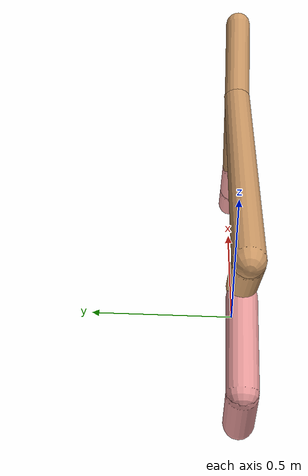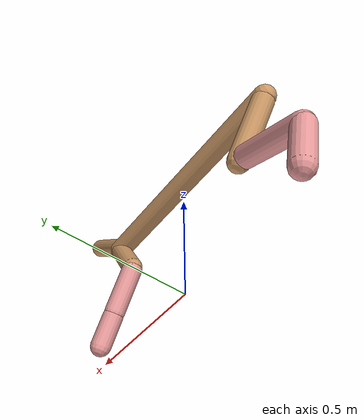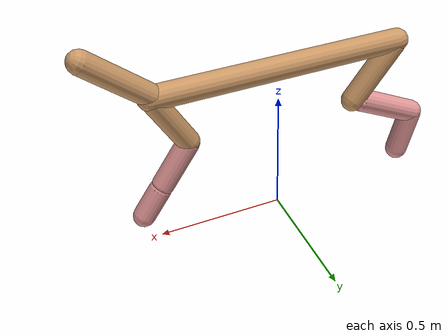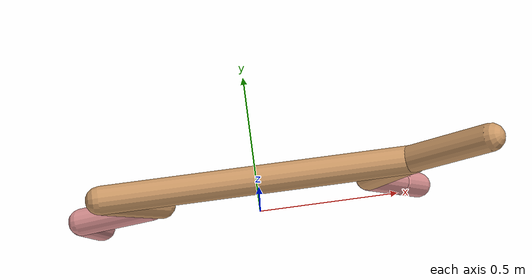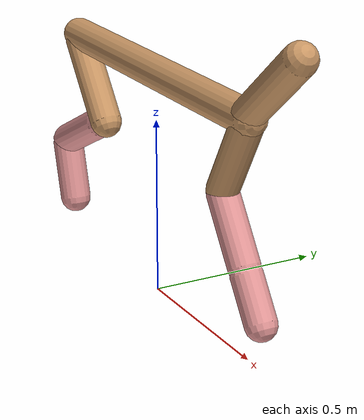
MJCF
<mujoco model="cheetah">
  <compiler angle="radian" coordinate="local" inertiafromgeom="true" settotalmass="14" />
  <default>
    <joint armature=".1" damping=".01" limited="true" solimplimit="0 .8 .03" solreflimit=".02 1" stiffness="8" />
    <geom conaffinity="0" condim="3" contype="1" friction="0.8 .1 .1" rgba="0.8 0.6 .4 1" solimp="0.0 0.8 0.01" solref="0.02 1" />
    <motor ctrllimited="true" ctrlrange="-1 1" />
  </default>
  <size nstack="300000" nuser_geom="1" />
  <option gravity="0 0 -9.81" timestep="0.01" />
  <worldbody>
    <body name="torso" pos="0.0 0.0 0.6359895837008127">
      <joint armature="0" axis="1 0 0" damping="0" limited="false" name="ignorex" pos="0 0 0" stiffness="0" type="slide" />
      <joint armature="0" axis="0 0 1" damping="0" limited="false" name="ignorez" pos="0 0 0" stiffness="0" type="slide" />
      <joint armature="0" axis="0 1 0" damping="0" limited="false" name="ignorey" pos="0 0 0" stiffness="0" type="hinge" />
      <geom fromto="-0.5 0.0 0.0 0.4905495044434307 0.0 0.0" name="torso" size="0.04601643105455213" type="capsule" />
      <geom axisangle="0 1 0 .87" name="head" pos="0.5905495044434307 0.0 0.1" size="0.04393499022125838 0.15" type="capsule" />

      <body name="bthigh" pos="-.5 0 0">
        <joint axis="0 1 0" damping="6" name="bthigh" pos="0 0 0" range="-.52 1.05" stiffness="240" type="hinge" />
        <geom axisangle="0 1 0 -3.8" name="bthigh" pos="0.09371987255040223 0.0 -0.12183583431552289" size="0.04597670104156335 0.13469982514193155" type="capsule" />
        <body name="bshin" pos="0.14743974510080446 0.0 -0.23367166863104577">
          <joint axis="0 1 0" damping="4.5" name="bshin" pos="0 0 0" range="-.785 .785" stiffness="180" type="hinge" />
          <geom axisangle="0 1 0 -2.03" name="bshin" pos="-0.1304695622774723 0.0 -0.06523478113873615" rgba="0.9 0.6 0.6 1" size="0.04597670104156335 0.1393446466985499" type="capsule" />
          <body name="bfoot" pos="-0.2609391245549446 0.0 -0.1304695622774723">
            <joint axis="0 1 0" damping="3" name="bfoot" pos="0 0 0" range="-.4 .785" stiffness="120" type="hinge" />
            <geom axisangle="0 1 0 -.27" name="bfoot" pos="0.02802704384642718 0.0 -0.09062077510344789" rgba="0.9 0.6 0.6 1" size="0.04597670104156335 0.0873226452644246" type="capsule" />
            <inertial mass="10" />
          </body>
        </body>
      </body>
      <body name="fthigh" pos="0.4905495044434307 0.0 0.0">
        <joint axis="0 1 0" damping="4.5" name="fthigh" pos="0 0 0" range="-1.5 0.8" stiffness="180" type="hinge" />
        <geom axisangle="0 1 0 .52" name="fthigh" pos="-0.06551292027620183 0.0 -0.1123078633306317" size="0.04345592406479353 0.12409478518013399" type="capsule" />
        <body name="fshin" pos="-0.13102584055240366 0.0 -0.2246157266612634">
          <joint axis="0 1 0" damping="3" name="fshin" pos="0 0 0" range="-1.2 1.1" stiffness="120" type="hinge" />
          <geom axisangle="0 1 0 -.6" name="fshin" pos="0.06084454563428157 0.0 -0.08424629395515909" rgba="0.9 0.6 0.6 1" size="0.04345592406479353 0.09890261074506919" type="capsule" />
          <body name="ffoot" pos="0.12168909126856314 0.0 -0.16849258791031818">
            <joint axis="0 1 0" damping="1.5" name="ffoot" pos="0 0 0" range="-3.1 -0.3" stiffness="60" type="hinge" />
            <geom axisangle="0 1 0 -.6" name="ffoot" pos="0.04246549341256841 0.0 -0.06605743419732865" rgba="0.9 0.6 0.6 1" size="0.04345592406479353 0.06531304483164947" type="capsule" />
            <inertial mass="10" />
          </body>
        </body>
      </body>
    </body>
  </worldbody>
  <actuator>
    <motor gear="120" joint="bthigh" name="bthigh" />
    <motor gear="90" joint="bshin" name="bshin" />
    <motor gear="60" joint="bfoot" name="bfoot" />
    <motor gear="120" joint="fthigh" name="fthigh" />
    <motor gear="60" joint="fshin" name="fshin" />
    <motor gear="30" joint="ffoot" name="ffoot" />
  </actuator>
</mujoco>
